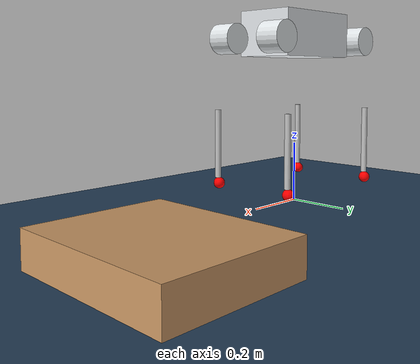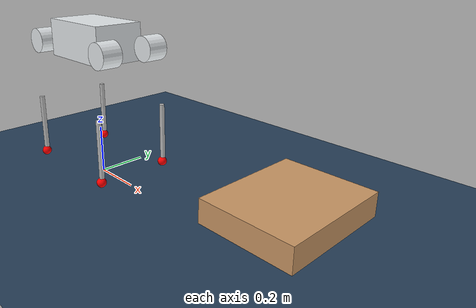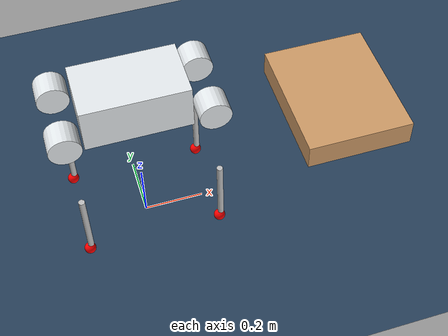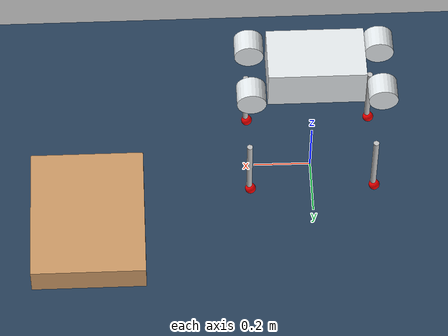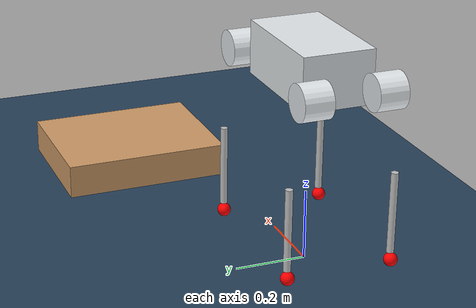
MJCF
<mujoco model="scene">
  <option timestep="0.005"/>
  <include file="mevius.xml"/>

  <visual>
    <headlight diffuse="0.6 0.6 0.6"  ambient="0.3 0.3 0.3" specular="0 0 0"/>
    <rgba haze="0.15 0.25 0.35 1"/>
    <global azimuth="120" elevation="-20"/>
  </visual>

  <asset>
    <texture type="skybox" builtin="gradient" rgb1="0.3 0.5 0.7" rgb2="0 0 0" width="512"
        height="3072"/>
    <texture type="2d" name="groundplane" builtin="checker" mark="edge" rgb1="0.2 0.3 0.4"
        rgb2="0.1 0.2 0.3" markrgb="0.8 0.8 0.8" width="300" height="300"/>
    <material name="groundplane" texture="groundplane" texuniform="true" texrepeat="5 5"
        reflectance="0.2"/>
  </asset>

  <worldbody>
    <light pos="0 0 1.5" dir="0 0 -1" directional="true"/>
    <geom name="floor" pos="0 0 0.0" size="0 0 0.05" type="plane" material="groundplane"/>

    <!-- box object -->
    <body name="box" pos="0.8 0.25 0.05">
      <geom size="0.2 0.25 0.05" type="box" rgba="0.8 0.6 0.4 1"/>
    </body>
  </worldbody>

  <actuator>
    <position name="FR_collar" kp="50" kv="2"   joint="FR_collar"/>
    <position name="FR_hip"    kp="50" kv="2"   joint="FR_hip"   />
    <position name="FR_knee"   kp="30" kv="0.5" joint="FR_knee"  />
    <position name="FL_collar" kp="50" kv="2"   joint="FL_collar"/>
    <position name="FL_hip"    kp="50" kv="2"   joint="FL_hip"   />
    <position name="FL_knee"   kp="30" kv="0.5" joint="FL_knee"  />
    <position name="BR_collar" kp="50" kv="2"   joint="BR_collar"/>
    <position name="BR_hip"    kp="50" kv="2"   joint="BR_hip"   />
    <position name="BR_knee"   kp="30" kv="0.5" joint="BR_knee"  />
    <position name="BL_collar" kp="50" kv="2"   joint="BL_collar"/>
    <position name="BL_hip"    kp="50" kv="2"   joint="BL_hip"   />
    <position name="BL_knee"   kp="30" kv="0.5" joint="BL_knee"  />
  </actuator>

  <keyframe>
    <key name="STANDBY"
      qpos="0 0 0 0 0 0 0 -0.15 1.325 -2.8731 0.15 1.325 -2.8731 -0.15 1.325 -2.8731 0.15 1.325 -2.8731"
      ctrl="-0.15 1.325 -2.8731 0.15 1.325 -2.8731 -0.15 1.325 -2.8731 0.15 1.325 -2.8731" />
  </keyframe>

</mujoco>

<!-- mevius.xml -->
<mujoco model="mevius">
  <compiler angle="radian"/>
  <worldbody>
    <body name="base_link" pos="0 0 0.5">
      <inertial pos="-0.00288686 0 0.0628888" quat="-0.00465096 0.716052 0.0137655 0.697895" mass="7.46951" diaginertia="0.111398 0.0895517 0.0413663"/>
      <joint name="base_joint" type="free" limited="false" actuatorfrclimited="false"/>
      <geom size="0.167 0.1 0.075" pos="0 0 0.075" type="box" rgba="0.898039 0.917647 0.929412 1"/>
      <body name="FR_scapula_link" pos="0.16405 -0.072 0.0565">
        <inertial pos="0.0516252 0.0119 0.000134643" quat="0.645629 0.00294725 0.00291678 0.76364" mass="0.792389" diaginertia="0.000956565 0.000655523 0.000624286"/>
        <joint name="FR_collar" pos="0 0 0" axis="1 0 0" range="-0.7854 0.7854" actuatorfrcrange="-25 25" armature="4.14e-3"/>
        <geom size="0.05 0.04" pos="0.06 -0.03 0" quat="0.707388 0.706825 0 0" type="cylinder" rgba="0.898039 0.917647 0.929412 1"/>
        <body name="FR_thigh_link" pos="0.0555 -0.01205 0">
          <inertial pos="-0.00458316 -0.0450237 -0.0462116" quat="0.707562 0.00759254 0.00814229 0.706564" mass="1.28036" diaginertia="0.00514578 0.00466467 0.000731296"/>
          <joint name="FR_hip" pos="0 0 0" axis="0 1 0" range="0 1.5708" actuatorfrcrange="-25 25" armature="4.14e-3"/>
          <body name="FR_calf_link" pos="0 -0.06555 -0.25">
            <inertial pos="0.00460409 3.43409e-06 -0.150039" quat="0.706597 0.00358695 0.00364389 0.707598" mass="0.151513" diaginertia="0.00106111 0.00105823 1.12276e-05"/>
            <joint name="FR_knee" pos="0 0 0" axis="0 1 0" range="-2.8745 -1.08" actuatorfrcrange="-25 25" armature="4.14e-3"/>
            <geom size="0.01 0.115" pos="0.008 0 -0.1" type="cylinder" rgba="0.752941 0.752941 0.752941 1"/>
            <geom size="0.019" pos="0.003 0 -0.235" rgba="1 0 0 1"/>
          </body>
        </body>
      </body>
      <body name="FL_scapula_link" pos="0.16405 0.072 0.0565">
        <inertial pos="0.0516252 -0.0119 0.000157365" quat="0.76357 0.0106903 0.00893315 0.645574" mass="0.792389" diaginertia="0.000956565 0.000655546 0.000624264"/>
        <joint name="FL_collar" pos="0 0 0" axis="1 0 0" range="-0.7854 0.7854" actuatorfrcrange="-25 25" armature="4.14e-3"/>
        <geom size="0.05 0.04" pos="0.06 0.03 0" quat="0.707388 0.706825 0 0" type="cylinder" rgba="0.898039 0.917647 0.929412 1"/>
        <body name="FL_thigh_link" pos="0.0555 0.01205 0">
          <inertial pos="-0.004596 0.0450237 -0.0462263" quat="0.706606 0.00830196 0.00769707 0.707517" mass="1.28036" diaginertia="0.00514578 0.00466509 0.000730872"/>
          <joint name="FL_hip" pos="0 0 0" axis="0 1 0" range="0 1.5708" actuatorfrcrange="-25 25" armature="4.14e-3"/>
          <body name="FL_calf_link" pos="0 0.06555 -0.25">
            <inertial pos="0.00460409 3.43409e-06 -0.150039" quat="0.706597 0.00358695 0.00364389 0.707598" mass="0.151513" diaginertia="0.00106111 0.00105823 1.12276e-05"/>
            <joint name="FL_knee" pos="0 0 0" axis="0 1 0" range="-2.8745 -1.08" actuatorfrcrange="-25 25" armature="4.14e-3"/>
            <geom size="0.01 0.115" pos="0.008 0 -0.1" type="cylinder" rgba="0.752941 0.752941 0.752941 1"/>
            <geom size="0.019" pos="0.003 0 -0.235" rgba="1 0 0 1"/>
          </body>
        </body>
      </body>
      <body name="BR_scapula_link" pos="-0.16405 -0.072 0.0565">
        <inertial pos="-0.051625 0.0119 -0.00013464" quat="0.76364 0.00291667 0.00294715 0.645629" mass="0.79239" diaginertia="0.000956567 0.000655526 0.000624288"/>
        <joint name="BR_collar" pos="0 0 0" axis="1 0 0" range="-0.7854 0.7854" actuatorfrcrange="-25 25" armature="4.14e-3"/>
        <geom size="0.05 0.04" pos="-0.06 -0.03 0" quat="0.707388 0.706825 0 0" type="cylinder" rgba="0.898039 0.917647 0.929412 1"/>
        <body name="BR_thigh_link" pos="-0.0555 -0.01205 0">
          <inertial pos="-0.0038406 -0.045024 -0.046019" quat="0.706497 0.00770251 0.00826389 0.707626" mass="1.2804" diaginertia="0.0051458 0.004665 0.000730982"/>
          <joint name="BR_hip" pos="0 0 0" axis="0 1 0" range="0 1.5708" actuatorfrcrange="-25 25" armature="4.14e-3"/>
          <body name="BR_calf_link" pos="0 -0.06555 -0.25">
            <inertial pos="0.00460409 3.43409e-06 -0.150039" quat="0.706597 0.00358695 0.00364389 0.707598" mass="0.151513" diaginertia="0.00106111 0.00105823 1.12276e-05"/>
            <joint name="BR_knee" pos="0 0 0" axis="0 1 0" range="-2.8745 -1.08" actuatorfrcrange="-25 25" armature="4.14e-3"/>
            <geom size="0.01 0.115" pos="0.008 0 -0.1" type="cylinder" rgba="0.752941 0.752941 0.752941 1"/>
            <geom size="0.019" pos="0.003 0 -0.235" rgba="1 0 0 1"/>
          </body>
        </body>
      </body>
      <body name="BL_scapula_link" pos="-0.16405 0.072 0.0565">
        <inertial pos="-0.0516252 -0.0119 -0.000157365" quat="0.645574 0.00893315 0.0106903 0.76357" mass="0.792389" diaginertia="0.000956565 0.000655546 0.000624264"/>
        <joint name="BL_collar" pos="0 0 0" axis="1 0 0" range="-0.7854 0.7854" actuatorfrcrange="-25 25" armature="4.14e-3"/>
        <geom size="0.05 0.04" pos="-0.06 0.03 0" quat="0.707388 0.706825 0 0" type="cylinder" rgba="0.898039 0.917647 0.929412 1"/>
        <body name="BL_thigh_link" pos="-0.0555 0.01205 0">
          <inertial pos="-0.00390162 0.0450237 -0.0460663" quat="0.707686 0.00808874 0.00759905 0.70644" mass="1.28036" diaginertia="0.00514578 0.00466466 0.000731305"/>
          <joint name="BL_hip" pos="0 0 0" axis="0 1 0" range="0 1.5708" actuatorfrcrange="-25 25" armature="4.14e-3"/>
          <body name="BL_calf_link" pos="0 0.06555 -0.25">
            <inertial pos="0.00460409 3.43409e-06 -0.150039" quat="0.706597 0.00358695 0.00364389 0.707598" mass="0.151513" diaginertia="0.00106111 0.00105823 1.12276e-05"/>
            <joint name="BL_knee" pos="0 0 0" axis="0 1 0" range="-2.8745 -1.08" actuatorfrcrange="-25 25" armature="4.14e-3"/>
            <geom size="0.01 0.115" pos="0.008 0 -0.1" type="cylinder" rgba="0.752941 0.752941 0.752941 1"/>
            <geom size="0.019" pos="0.003 0 -0.235" rgba="1 0 0 1"/>
          </body>
        </body>
      </body>
    </body>
  </worldbody>
</mujoco>
